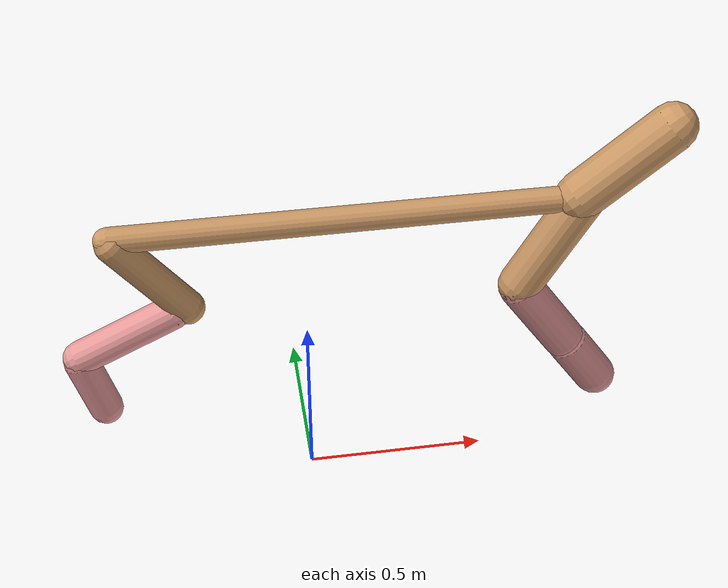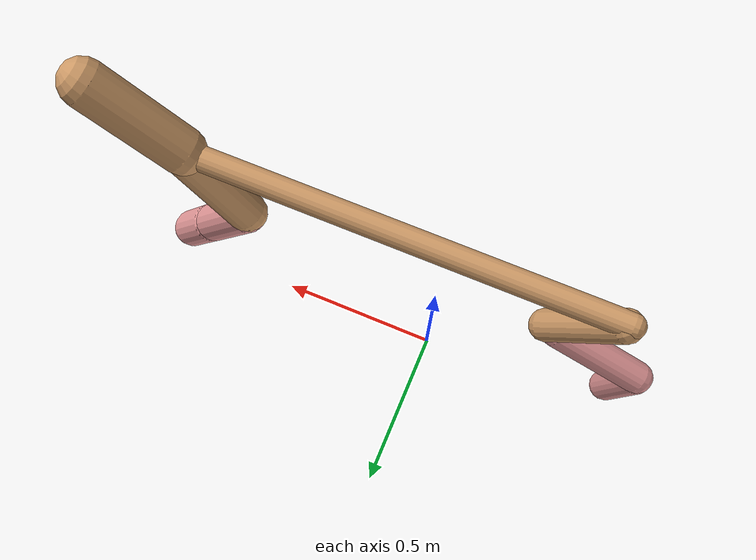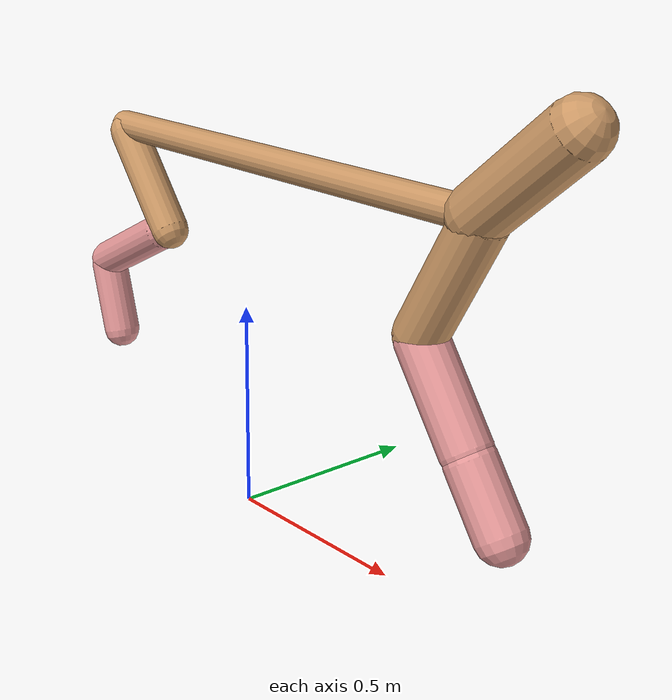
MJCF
<mujoco model="cheetah">
  <compiler angle="radian" coordinate="local" inertiafromgeom="true" settotalmass="14" />
  <default>
    <joint armature=".1" damping=".01" limited="true" solimplimit="0 .8 .03" solreflimit=".02 1" stiffness="8" />
    <geom conaffinity="0" condim="3" contype="1" friction="0.8 .1 .1" rgba="0.8 0.6 .4 1" solimp="0.0 0.8 0.01" solref="0.02 1" />
    <motor ctrllimited="true" ctrlrange="-1 1" />
  </default>
  <size nstack="300000" nuser_geom="1" />
  <option gravity="0 0 -9.81" timestep="0.01" />
  <worldbody>
    <body name="torso" pos="0.0 0.0 0.8652593448941526">
      <joint armature="0" axis="1 0 0" damping="0" limited="false" name="ignorex" pos="0 0 0" stiffness="0" type="slide" />
      <joint armature="0" axis="0 0 1" damping="0" limited="false" name="ignorez" pos="0 0 0" stiffness="0" type="slide" />
      <joint armature="0" axis="0 1 0" damping="0" limited="false" name="ignorey" pos="0 0 0" stiffness="0" type="hinge" />
      <geom fromto="-0.5 0.0 0.0 0.744552982214123 0.0 0.0" name="torso" size="0.03525451787045323" type="capsule" />
      <geom axisangle="0 1 0 .87" name="head" pos="0.844552982214123 0.0 0.1" size="0.06566333349996242 0.15" type="capsule" />

      <body name="bthigh" pos="-.5 0 0">
        <joint axis="0 1 0" damping="6" name="bthigh" pos="0 0 0" range="-.52 1.05" stiffness="240" type="hinge" />
        <geom axisangle="0 1 0 -3.8" name="bthigh" pos="0.09849960216451065 0.0 -0.12804948281386383" size="0.04654871459841635 0.1425391645812542" type="capsule" />
        <body name="bshin" pos="0.15699920432902129 0.0 -0.24609896562772768">
          <joint axis="0 1 0" damping="4.5" name="bshin" pos="0 0 0" range="-.785 .785" stiffness="180" type="hinge" />
          <geom axisangle="0 1 0 -2.03" name="bshin" pos="-0.13772306402299805 0.0 -0.06886153201149903" rgba="0.9 0.6 0.6 1" size="0.04654871459841635 0.14745430818750438" type="capsule" />
          <body name="bfoot" pos="-0.2754461280459961 0.0 -0.13772306402299805">
            <joint axis="0 1 0" damping="3" name="bfoot" pos="0 0 0" range="-.4 .785" stiffness="120" type="hinge" />
            <geom axisangle="0 1 0 -.27" name="bfoot" pos="0.029528637091190614 0.0 -0.09547592659484966" rgba="0.9 0.6 0.6 1" size="0.04654871459841635 0.09240469979750274" type="capsule" />
            <inertial mass="10" />
          </body>
        </body>
      </body>
      <body name="fthigh" pos="0.744552982214123 0.0 0.0">
        <joint axis="0 1 0" damping="4.5" name="fthigh" pos="0 0 0" range="-1.5 0.8" stiffness="180" type="hinge" />
        <geom axisangle="0 1 0 .52" name="fthigh" pos="-0.08158454980478134 0.0 -0.139859228236768" size="0.058879971764561216 0.15599110132941665" type="capsule" />
        <body name="fshin" pos="-0.1631690996095627 0.0 -0.279718456473536">
          <joint axis="0 1 0" damping="3" name="fshin" pos="0 0 0" range="-1.2 1.1" stiffness="120" type="hinge" />
          <geom axisangle="0 1 0 -.6" name="fshin" pos="0.07572837369165641 0.0 -0.10485467126537042" rgba="0.9 0.6 0.6 1" size="0.058879971764561216 0.12432373489412153" type="capsule" />
          <body name="ffoot" pos="0.15145674738331283 0.0 -0.20970934253074083">
            <joint axis="0 1 0" damping="1.5" name="ffoot" pos="0 0 0" range="-3.1 -0.3" stiffness="60" type="hinge" />
            <geom axisangle="0 1 0 -.6" name="ffoot" pos="0.05154348030344206 0.0 -0.08017874713868767" rgba="0.9 0.6 0.6 1" size="0.058879971764561216 0.0821005796470614" type="capsule" />
            <inertial mass="10" />
          </body>
        </body>
      </body>
    </body>
  </worldbody>
  <actuator>
    <motor gear="120" joint="bthigh" name="bthigh" />
    <motor gear="90" joint="bshin" name="bshin" />
    <motor gear="60" joint="bfoot" name="bfoot" />
    <motor gear="120" joint="fthigh" name="fthigh" />
    <motor gear="60" joint="fshin" name="fshin" />
    <motor gear="30" joint="ffoot" name="ffoot" />
  </actuator>
</mujoco>
